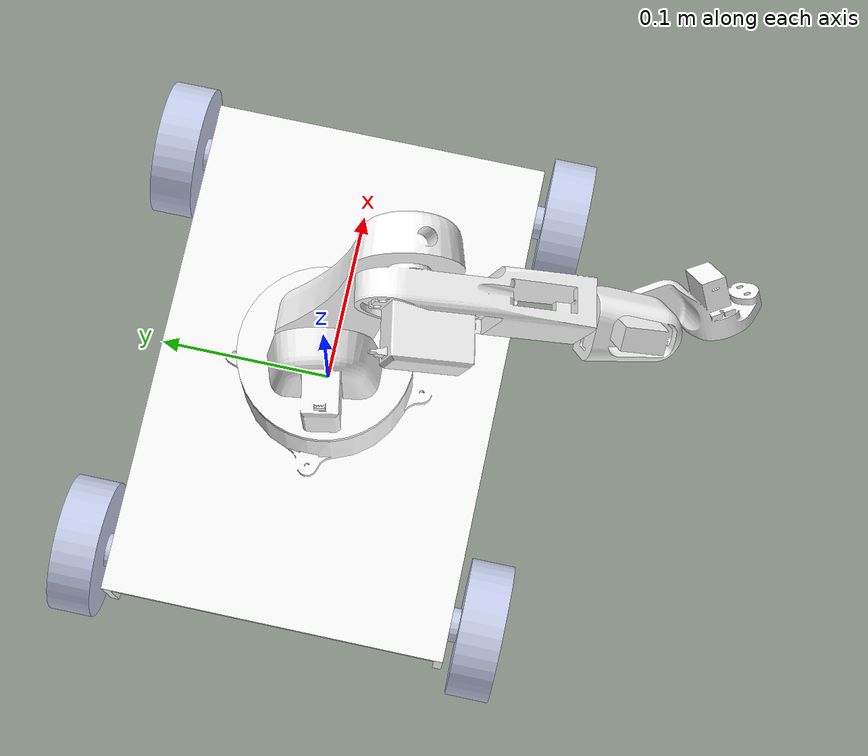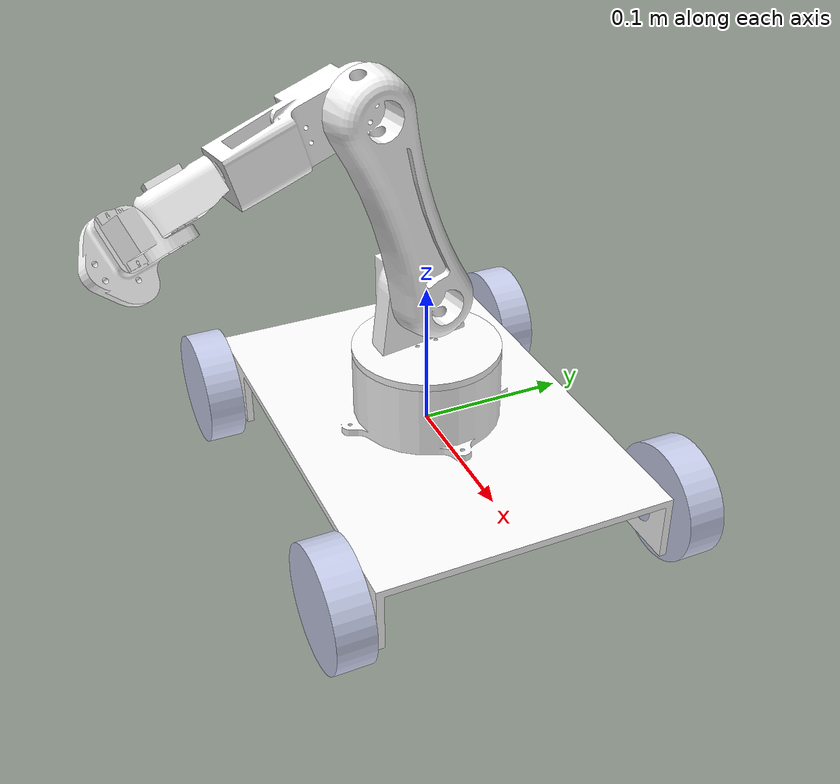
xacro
<?xml version="1.0"?>
<robot xmlns:xacro="http://www.ros.org/wiki/xacro" name="arm">
    <xacro:arg name="initial_positions_file" default="initial_positions.yaml" />
    <xacro:arg name="ros2_control_hardware_type" default="mock_components/GenericSystem" />
    <xacro:arg name="ros2_control_system_name" default="ArmSystem" />
    <xacro:arg name="serial_port" default="/dev/ttyAMA0" />
    <xacro:arg name="baud_rate" default="115200" />
    <xacro:arg name="loopback_mode" default="true" />

    <!-- Import arm urdf file -->
    <xacro:include filename="$(find botarm)/urdf/arm.urdf" />

    <!-- Import control_xacro -->
    <xacro:include filename="arm.ros2_control.xacro" />

    <xacro:arm_ros2_control
      name="$(arg ros2_control_system_name)"
      initial_positions_file="$(arg initial_positions_file)"
      hardware_plugin="$(arg ros2_control_hardware_type)"
      serial_port="$(arg serial_port)"
      baud_rate="$(arg baud_rate)"
      loopback_mode="$(arg loopback_mode)"/>

</robot>

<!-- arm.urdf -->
<robot
  name="arm">
  <link
    name="base_link">
    <inertial>
      <origin
        xyz="0.00019243 3.3007E-11 0.0060752"
        rpy="0 0 0" />
      <mass
        value="0.43438" />
      <inertia
        ixx="0.001538"
        ixy="1.8832E-13"
        ixz="-3.1375E-06"
        iyy="0.003042"
        iyz="-5.0193E-14"
        izz="0.0043855" />
    </inertial>
    <visual>
      <origin
        xyz="0 0 0"
        rpy="0 0 0" />
      <geometry>
        <mesh
          filename="package://botarm/meshes/base_link.STL" />
      </geometry>
      <material
        name="">
        <color
          rgba="1 1 1 1" />
      </material>
    </visual>
    <collision>
      <origin
        xyz="0 0 0"
        rpy="0 0 0" />
      <geometry>
        <mesh
          filename="package://botarm/meshes/base_link.STL" />
      </geometry>
    </collision>
  </link>
  <link
    name="wheel1">
    <inertial>
      <origin
        xyz="0 -5.5511E-17 -0.012949"
        rpy="0 0 0" />
      <mass
        value="0.12893" />
      <inertia
        ixx="5.7923E-05"
        ixy="1.797E-09"
        ixz="1.6941E-21"
        iyy="5.7925E-05"
        iyz="-6.3788E-21"
        izz="0.00010069" />
    </inertial>
    <visual>
      <origin
        xyz="0 0 0"
        rpy="0 0 0" />
      <geometry>
        <mesh
          filename="package://botarm/meshes/wheel1.STL" />
      </geometry>
      <material
        name="">
        <color
          rgba="0.79216 0.81961 0.93333 1" />
      </material>
    </visual>
    <collision>
      <origin
        xyz="0 0 0"
        rpy="0 0 0" />
      <geometry>
        <mesh
          filename="package://botarm/meshes/wheel1.STL" />
      </geometry>
    </collision>
  </link>
  <joint
    name="wheel1_joint"
    type="continuous">
    <origin
      xyz="0.125 0.13 -0.0175"
      rpy="-1.5708 0 0" />
    <parent
      link="base_link" />
    <child
      link="wheel1" />
    <axis
      xyz="0 0 1" />
    <limit
      effort="50"
      velocity="50" />
    <dynamics
      damping="0.2"
      friction="0.25" />
  </joint>
  <link
    name="wheel2">
    <inertial>
      <origin
        xyz="0 0 -0.012949"
        rpy="0 0 0" />
      <mass
        value="0.12893" />
      <inertia
        ixx="5.7926E-05"
        ixy="-1.0839E-09"
        ixz="-1.0164E-20"
        iyy="5.7922E-05"
        iyz="6.9964E-21"
        izz="0.00010069" />
    </inertial>
    <visual>
      <origin
        xyz="0 0 0"
        rpy="0 0 0" />
      <geometry>
        <mesh
          filename="package://botarm/meshes/wheel2.STL" />
      </geometry>
      <material
        name="">
        <color
          rgba="0.79216 0.81961 0.93333 1" />
      </material>
    </visual>
    <collision>
      <origin
        xyz="0 0 0"
        rpy="0 0 0" />
      <geometry>
        <mesh
          filename="package://botarm/meshes/wheel2.STL" />
      </geometry>
    </collision>
  </link>
  <joint
    name="wheel2_joint"
    type="continuous">
    <origin
      xyz="-0.125 0.13 -0.0175"
      rpy="-1.5708 0 0" />
    <parent
      link="base_link" />
    <child
      link="wheel2" />
    <axis
      xyz="0 0 1" />
    <limit
      effort="50"
      velocity="50" />
    <dynamics
      damping="0.2"
      friction="0.25" />
  </joint>
  <link
    name="wheel3">
    <inertial>
      <origin
        xyz="2.2204E-16 -5.5511E-17 0.012949"
        rpy="0 0 0" />
      <mass
        value="0.12893" />
      <inertia
        ixx="5.7922E-05"
        ixy="-7.1036E-10"
        ixz="1.5247E-20"
        iyy="5.7926E-05"
        iyz="-3.2219E-21"
        izz="0.00010069" />
    </inertial>
    <visual>
      <origin
        xyz="0 0 0"
        rpy="0 0 0" />
      <geometry>
        <mesh
          filename="package://botarm/meshes/wheel3.STL" />
      </geometry>
      <material
        name="">
        <color
          rgba="0.79216 0.81961 0.93333 1" />
      </material>
    </visual>
    <collision>
      <origin
        xyz="0 0 0"
        rpy="0 0 0" />
      <geometry>
        <mesh
          filename="package://botarm/meshes/wheel3.STL" />
      </geometry>
    </collision>
  </link>
  <joint
    name="wheel3_joint"
    type="continuous">
    <origin
      xyz="0.125 -0.13 -0.0175"
      rpy="-1.5708 0 0" />
    <parent
      link="base_link" />
    <child
      link="wheel3" />
    <axis
      xyz="0 0 -1" />
    <limit
      effort="50"
      velocity="50" />
    <dynamics
      damping="0.2"
      friction="0.25" />
  </joint>
  <link
    name="wheel4">
    <inertial>
      <origin
        xyz="2.2204E-16 0 0.012949"
        rpy="0 0 0" />
      <mass
        value="0.12893" />
      <inertia
        ixx="5.7922E-05"
        ixy="-2.6154E-10"
        ixz="1.3553E-20"
        iyy="5.7926E-05"
        iyz="-3.2338E-21"
        izz="0.00010069" />
    </inertial>
    <visual>
      <origin
        xyz="0 0 0"
        rpy="0 0 0" />
      <geometry>
        <mesh
          filename="package://botarm/meshes/wheel4.STL" />
      </geometry>
      <material
        name="">
        <color
          rgba="0.79216 0.81961 0.93333 1" />
      </material>
    </visual>
    <collision>
      <origin
        xyz="0 0 0"
        rpy="0 0 0" />
      <geometry>
        <mesh
          filename="package://botarm/meshes/wheel4.STL" />
      </geometry>
    </collision>
  </link>
  <joint
    name="wheel4_joint"
    type="continuous">
    <origin
      xyz="-0.125 -0.13 -0.0175"
      rpy="-1.5708 0 0" />
    <parent
      link="base_link" />
    <child
      link="wheel4" />
    <axis
      xyz="0 0 -1" />
    <limit
      effort="50"
      velocity="50" />
    <dynamics
      damping="0.2"
      friction="0.25" />
  </joint>
  <link
    name="rotating_base">
    <inertial>
      <origin
        xyz="-0.013969 -0.0025099 0.022052"
        rpy="0 0 0" />
      <mass
        value="0.14233" />
      <inertia
        ixx="8.7679E-05"
        ixy="9.0601E-07"
        ixz="7.5871E-06"
        iyy="8.2798E-05"
        iyz="1.3633E-06"
        izz="8.0876E-05" />
    </inertial>
    <visual>
      <origin
        xyz="0 0 0"
        rpy="0 0 0" />
      <geometry>
        <mesh
          filename="package://botarm/meshes/rotating_base.STL" />
      </geometry>
      <material
        name="">
        <color
          rgba="1 1 1 1" />
      </material>
    </visual>
    <collision>
      <origin
        xyz="0 0 0"
        rpy="0 0 0" />
      <geometry>
        <mesh
          filename="package://botarm/meshes/rotating_base.STL" />
      </geometry>
    </collision>
  </link>
  <joint
    name="rotating_base_joint"
    type="revolute">
    <origin
      xyz="0 0 0.0575"
      rpy="0 0 0" />
    <parent
      link="base_link" />
    <child
      link="rotating_base" />
    <axis
      xyz="0 0 1" />
    <limit
      lower="-3.14"
      upper="3.14"
      effort="0"
      velocity="20" />
  </joint>
  <link
    name="link1">
    <inertial>
      <origin
        xyz="0.0699998879741024 -0.00631835962652538 -3.70071256972082E-08"
        rpy="0 0 0" />
      <mass
        value="0.14095311416068" />
      <inertia
        ixx="3.1462032524667E-05"
        ixy="-3.40431825537412E-11"
        ixz="-5.98694462705478E-11"
        iyy="0.000440417713670742"
        iyz="1.86188731668641E-11"
        izz="0.000421295262324613" />
    </inertial>
    <visual>
      <origin
        xyz="0 0 0"
        rpy="0 0 0" />
      <geometry>
        <mesh
          filename="package://botarm/meshes/link1.STL" />
      </geometry>
      <material
        name="">
        <color
          rgba="1 1 1 1" />
      </material>
    </visual>
    <collision>
      <origin
        xyz="0 0 0"
        rpy="0 0 0" />
      <geometry>
        <mesh
          filename="package://botarm/meshes/link1.STL" />
      </geometry>
    </collision>
  </link>
  <joint
    name="link1_joint"
    type="revolute">
    <origin
      xyz="0.0039863 0.00043279 0.040958"
      rpy="3.1416 -1.2509 -1.393" />
    <parent
      link="rotating_base" />
    <child
      link="link1" />
    <axis
      xyz="0 -1 0" />
    <limit
      lower="-3.14"
      upper="3.14"
      effort="0"
      velocity="20" />
  </joint>
  <link
    name="link2">
    <inertial>
      <origin
        xyz="0.025044 0.023207 1.5379E-05"
        rpy="0 0 0" />
      <mass
        value="0.098855" />
      <inertia
        ixx="1.7663E-05"
        ixy="-7.0159E-09"
        ixz="-7.106E-08"
        iyy="6.4781E-05"
        iyz="1.8891E-10"
        izz="6.6788E-05" />
    </inertial>
    <visual>
      <origin
        xyz="0 0 0"
        rpy="0 0 0" />
      <geometry>
        <mesh
          filename="package://botarm/meshes/link2.STL" />
      </geometry>
      <material
        name="">
        <color
          rgba="1 1 1 1" />
      </material>
    </visual>
    <collision>
      <origin
        xyz="0 0 0"
        rpy="0 0 0" />
      <geometry>
        <mesh
          filename="package://botarm/meshes/link2.STL" />
      </geometry>
    </collision>
  </link>
  <joint
    name="link2_joint"
    type="revolute">
    <origin
      xyz="0.14 0 0"
      rpy="0 -1.5388 0" />
    <parent
      link="link1" />
    <child
      link="link2" />
    <axis
      xyz="0 1 0" />
    <limit
      lower="-3.14"
      upper="3.14"
      effort="0"
      velocity="15" />
  </joint>
  <link
    name="link3">
    <inertial>
      <origin
        xyz="0.0088938 0.0018866 0.022672"
        rpy="0 0 0" />
      <mass
        value="0.029888" />
      <inertia
        ixx="6.0892E-06"
        ixy="2.0842E-08"
        ixz="-2.2477E-08"
        iyy="6.7402E-06"
        iyz="-4.4192E-07"
        izz="3.5974E-06" />
    </inertial>
    <visual>
      <origin
        xyz="0 0 0"
        rpy="0 0 0" />
      <geometry>
        <mesh
          filename="package://botarm/meshes/link3.STL" />
      </geometry>
      <material
        name="">
        <color
          rgba="1 1 1 1" />
      </material>
    </visual>
    <collision>
      <origin
        xyz="0 0 0"
        rpy="0 0 0" />
      <geometry>
        <mesh
          filename="package://botarm/meshes/link3.STL" />
      </geometry>
    </collision>
  </link>
<joint name="link3_joint" type="revolute">
  <origin xyz="0.090155 0.014424 -0.0052884"
          rpy="1.5708 -0.63394 1.5708"/>
  <parent link="link2"/>
  <child link="link3"/>
  <axis xyz="0 1 0"/>
  <limit lower="-1.57" upper="1.57" effort="10" velocity="15"/>
</joint>
  <link
    name="link4">
    <inertial>
      <origin
        xyz="0.0016482 -0.034386 -0.0024567"
        rpy="0 0 0" />
      <mass
        value="0.024884" />
      <inertia
        ixx="6.911E-06"
        ixy="8.4747E-07"
        ixz="5.6339E-08"
        iyy="3.527E-06"
        iyz="-5.5705E-07"
        izz="5.5539E-06" />
    </inertial>
    <visual>
      <origin
        xyz="0 0 0"
        rpy="0 0 0" />
      <geometry>
        <mesh
          filename="package://botarm/meshes/link4.STL" />
      </geometry>
      <material
        name="">
        <color
          rgba="1 1 1 1" />
      </material>
    </visual>
    <collision>
      <origin
        xyz="0 0 0"
        rpy="0 0 0" />
      <geometry>
        <mesh
          filename="package://botarm/meshes/link4.STL" />
      </geometry>
    </collision>
  </link>
  <joint name="link4_joint" type="revolute">
  <origin xyz="0.0094812 0.013878 0.030746"
          rpy="-1.5708 -0.46266 -0.035421"/>
  <parent link="link3"/>
  <child link="link4"/>
  <axis xyz="1 0 0"/>
  <limit lower="-1.57" upper="1.57" effort="10" velocity="10"/>
</joint>
  <link
    name="link5">
    <inertial>
      <origin
        xyz="0.0024149 0.0035268 -0.00083621"
        rpy="0 0 0" />
      <mass
        value="0.00022979" />
      <inertia
        ixx="5.2638E-09"
        ixy="-2.7534E-09"
        ixz="4.1376E-10"
        iyy="3.1279E-09"
        iyz="6.0427E-10"
        izz="7.5416E-09" />
    </inertial>
    <visual>
      <origin
        xyz="0 0 0"
        rpy="0 0 0" />
      <geometry>
        <mesh
          filename="package://botarm/meshes/link5.STL" />
      </geometry>
      <material
        name="">
        <color
          rgba="1 1 1 1" />
      </material>
    </visual>
    <collision>
      <origin
        xyz="0 0 0"
        rpy="0 0 0" />
      <geometry>
        <mesh
          filename="package://botarm/meshes/link5.STL" />
      </geometry>
    </collision>
  </link>
  <joint name="link5_joint" type="revolute">
  <origin xyz="0.01254 -0.03831 -0.013494"
          rpy="3.1416 -1.5708 0"/>
  <parent link="link4"/>
  <child link="link5"/>
  <axis xyz="0 0 1"/>
  <limit lower="-1.57" upper="1.57" effort="10" velocity="10"/>
</joint>
</robot>
